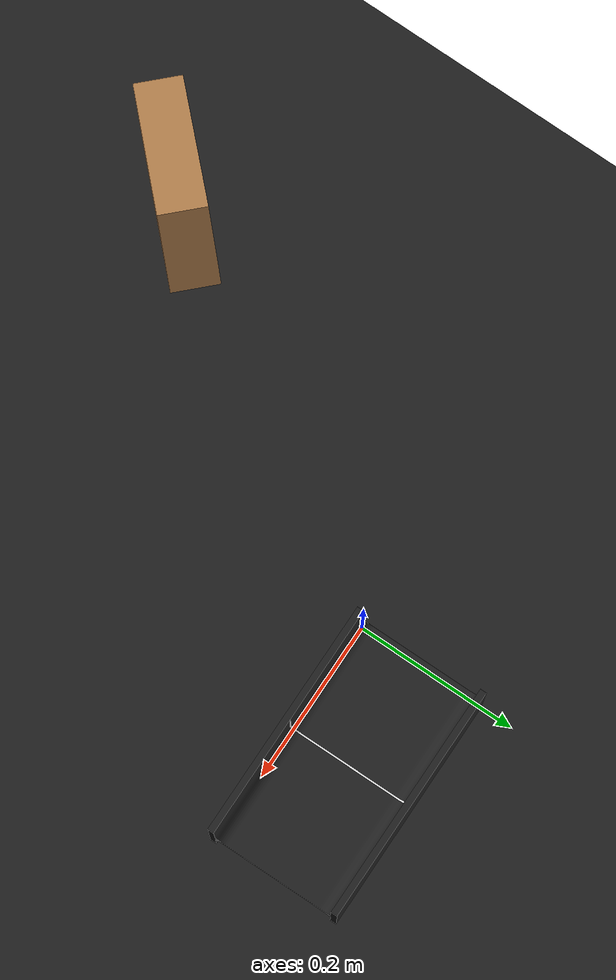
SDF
<sdf version="1.4">
 <world name="default">
  <model name="ground_plane">
   <static>1</static>
   <link name="link">
    <collision name="collision">
     <geometry><plane><normal>0 0 1</normal><size>100 100</size></plane></geometry>
     <surface><friction><ode><mu>100</mu><mu2>50</mu2></ode></friction></surface>
    </collision>
    <visual name="visual">
     <cast_shadows>0</cast_shadows>
     <geometry><plane><normal>0 0 1</normal><size>100 100</size></plane></geometry>
     <material>
      <script><uri>file://media/materials/scripts/gazebo.material</uri><name>Gazebo/Black</name></script>
     </material>
    </visual>
    <velocity_decay><linear>0</linear><angular>0</angular></velocity_decay>
    <gravity>0</gravity>
   </link>
  </model>
  <model name="beam">
   <pose>0 0 0.183 0 0 0</pose>
   <static>1</static>
   <link name="link">
    <inertial><mass>1000</mass></inertial>
    <visual name="visual">
     <geometry><mesh><scale>1 1 1</scale><uri>model://beam/meshes/beam.stl</uri></mesh></geometry>
     <material>
      <script><uri>file://media/materials/scripts/gazebo.material</uri><name>Gazebo/Black</name></script>
     </material>
    </visual>
    <velocity_decay><linear>0</linear><angular>0</angular></velocity_decay>
    <gravity>0</gravity>
   </link>
  </model>
  <model name="beam_weld">
   <pose>0.1415 0 0.183 0 0 0</pose>
   <static>1</static>
   <link name="link">
    <inertial><mass>1000</mass></inertial>
    <visual name="visual">
     <geometry><mesh><scale>1 1 1</scale><uri>model://beam_weld/meshes/beam_weld.stl</uri></mesh></geometry>
     <material>
      <script><uri>file://media/materials/scripts/gazebo.material</uri><name>Gazebo/White</name></script>
     </material>
    </visual>
    <velocity_decay><linear>0</linear><angular>0</angular></velocity_decay>
    <gravity>0</gravity>
   </link>
  </model>
  <model name="beam_weld_rectangle">
   <pose>0.145 -0.008 0.183 1.57079632679 2.35619449019 0</pose>
   <static>1</static>
   <link name="link">
    <inertial><mass>1000</mass></inertial>
    <visual name="visual">
     <geometry>
      <mesh><scale>1 1 1</scale><uri>model://beam_weld_rectangle/meshes/beam_weld_rectangle.stl</uri></mesh>
     </geometry>
     <material>
      <script><uri>file://media/materials/scripts/gazebo.material</uri><name>Gazebo/White</name></script>
     </material>
    </visual>
    <velocity_decay><linear>0</linear><angular>0</angular></velocity_decay>
    <gravity>0</gravity>
   </link>
  </model>
  <model name="camera_projection_mapping">
   <pose>-0.186441 -0.351267 0.80691 0 0.898792 0.76959</pose>
   <link name="projector_link">
    <inertial>
     <mass>1</mass>
     <inertia><ixx>0.1</ixx><ixy>0</ixy><ixz>0</ixz><iyy>0.1</iyy><iyz>0</iyz><izz>0.1</izz></inertia>
    </inertial>
    <visual name="projector_link_visual">
     <geometry><box><size>0.1 0.05 0.2</size></box></geometry>
     <material><script><name>Gazebo/Wood</name><uri>__default__</uri></script></material>
    </visual>
    <velocity_decay><linear>0</linear><angular>0</angular></velocity_decay>
    <sensor name="virtual_camera" type="camera">
     <camera name="projector_head">
      <horizontal_fov>0.812196</horizontal_fov>
      <image><width>1280</width><height>800</height><format>R8G8B8</format></image>
      <clip><near>0.19</near><far>3.2</far></clip>
      <noise><type>gaussian</type><mean>0</mean><stddev>0</stddev></noise>
     </camera>
     <plugin name="camera_controller" filename="libgazebo_ros_camera.so">
      <alwaysOn>true</alwaysOn>
      <updateRate>30.0</updateRate>
      <cameraName>virtual_camera</cameraName>
      <imageTopicName>image_raw</imageTopicName>
      <cameraInfoTopicName>camera_info</cameraInfoTopicName>
      <frameName>camera_link</frameName>
      <CxPrime>0</CxPrime>
      <Cx>0</Cx>
      <Cy>0</Cy>
      <focalLength>0</focalLength>
      <hackBaseline>0.07</hackBaseline>
      <distortionK1>0</distortionK1>
      <distortionK2>0</distortionK2>
      <distortionK3>0</distortionK3>
      <distortionT1>0</distortionT1>
      <distortionT2>0</distortionT2>
      <robotNamespace>/</robotNamespace>
     </plugin>
    </sensor>
   </link>
   <static>1</static>
  </model>
  <physics type="ode">
   <max_step_size>0.1</max_step_size>
   <real_time_factor>1</real_time_factor>
   <real_time_update_rate>10</real_time_update_rate>
   <max_contacts>3</max_contacts>
   <gravity>0 0 -9.8</gravity>
   <ode><solver><min_step_size>0.1</min_step_size><iters>1</iters></solver></ode>
  </physics>
  <scene><ambient>1 1 1 1</ambient><background>0 0 0 1</background><shadows>1</shadows></scene>
  <spherical_coordinates>
   <surface_model>EARTH_WGS84</surface_model>
   <latitude_deg>0</latitude_deg>
   <longitude_deg>0</longitude_deg>
   <elevation>0</elevation>
   <heading_deg>0</heading_deg>
  </spherical_coordinates>
 </world>
</sdf>
